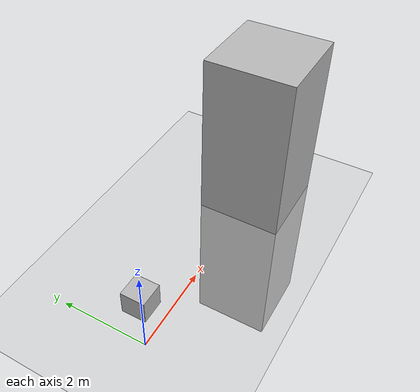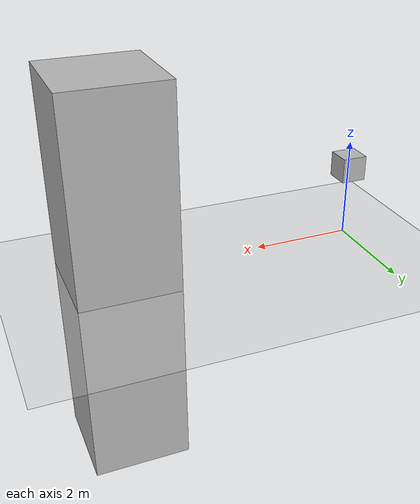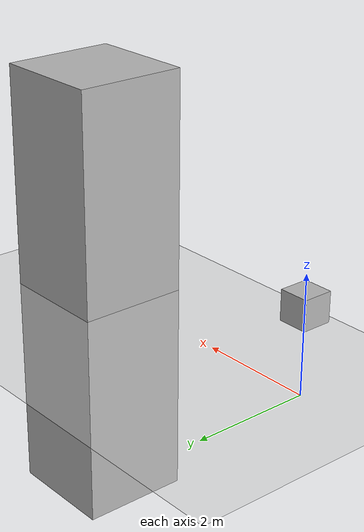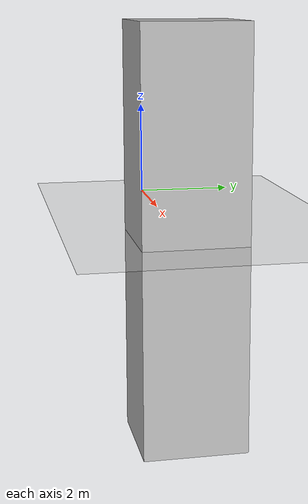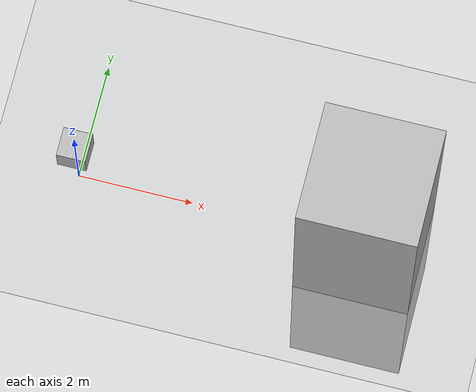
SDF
<?xml version="1.0" ?>
<sdf version="1.8">
  <world name="demo">
    <plugin filename="gz-sim-physics-system"
            name="gz::sim::systems::Physics">
    </plugin>
    <plugin filename="gz-sim-sensors-system"
            name="gz::sim::systems::Sensors">
      <render_engine>ogre2</render_engine>
      <background_color>0.8 0.8 0.8</background_color>
    </plugin>
    <plugin filename="gz-sim-scene-broadcaster-system"
            name="gz::sim::systems::SceneBroadcaster">
    </plugin>
    <plugin filename="gz-sim-user-commands-system"
            name="gz::sim::systems::UserCommands">
    </plugin>

    <gui fullscreen="0">

      <!-- 3D scene -->
      <plugin filename="MinimalScene" name="3D View">
        <gz-gui>
          <title>3D View</title>
          <property type="bool" key="showTitleBar">false</property>
          <property type="string" key="state">docked</property>
        </gz-gui>

        <engine>ogre2</engine>
        <scene>scene</scene>
        <ambient_light>0.4 0.4 0.4</ambient_light>
        <background_color>0.8 0.8 0.8</background_color>
        <camera_pose>-6 0 6 0 0.5 0</camera_pose>
      </plugin>

      <!-- Plugins that add functionality to the scene -->
      <plugin filename="EntityContextMenuPlugin" name="Entity context menu">
        <gz-gui>
          <property key="state" type="string">floating</property>
          <property key="width" type="double">5</property>
          <property key="height" type="double">5</property>
          <property key="showTitleBar" type="bool">false</property>
        </gz-gui>
      </plugin>
      <plugin filename="GzSceneManager" name="Scene Manager">
        <gz-gui>
          <property key="resizable" type="bool">false</property>
          <property key="width" type="double">5</property>
          <property key="height" type="double">5</property>
          <property key="state" type="string">floating</property>
          <property key="showTitleBar" type="bool">false</property>
        </gz-gui>
      </plugin>
      <plugin filename="InteractiveViewControl" name="Interactive view control">
        <gz-gui>
          <property key="resizable" type="bool">false</property>
          <property key="width" type="double">5</property>
          <property key="height" type="double">5</property>
          <property key="state" type="string">floating</property>
          <property key="showTitleBar" type="bool">false</property>
        </gz-gui>
      </plugin>
      <plugin filename="CameraTracking" name="Camera Tracking">
        <gz-gui>
          <property key="resizable" type="bool">false</property>
          <property key="width" type="double">5</property>
          <property key="height" type="double">5</property>
          <property key="state" type="string">floating</property>
          <property key="showTitleBar" type="bool">false</property>
        </gz-gui>
      </plugin>
      <!-- World control -->
      <plugin filename="WorldControl" name="World control">
        <gz-gui>
          <title>World control</title>
          <property type="bool" key="showTitleBar">false</property>
          <property type="bool" key="resizable">false</property>
          <property type="double" key="height">72</property>
          <property type="double" key="width">121</property>
          <property type="double" key="z">1</property>

          <property type="string" key="state">floating</property>
          <anchors target="3D View">
            <line own="left" target="left"/>
            <line own="bottom" target="bottom"/>
          </anchors>
        </gz-gui>

        <play_pause>true</play_pause>
        <step>true</step>
        <start_paused>true</start_paused>
        <use_event>true</use_event>

      </plugin>

      <!-- World statistics -->
      <plugin filename="WorldStats" name="World stats">
        <gz-gui>
          <title>World stats</title>
          <property type="bool" key="showTitleBar">false</property>
          <property type="bool" key="resizable">false</property>
          <property type="double" key="height">110</property>
          <property type="double" key="width">290</property>
          <property type="double" key="z">1</property>

          <property type="string" key="state">floating</property>
          <anchors target="3D View">
            <line own="right" target="right"/>
            <line own="bottom" target="bottom"/>
          </anchors>
        </gz-gui>

        <sim_time>true</sim_time>
        <real_time>true</real_time>
        <real_time_factor>true</real_time_factor>
        <iterations>true</iterations>
      </plugin>

      <plugin filename="VisualizeLidar" name="Visualize Lidar">
      </plugin>

      <!-- Inspector -->
      <plugin filename="ComponentInspector" name="Component inspector">
        <gz-gui>
          <property type="string" key="state">docked</property>
        </gz-gui>
      </plugin>

      <!-- Entity tree -->
      <plugin filename="EntityTree" name="Entity tree">
        <gz-gui>
          <property type="string" key="state">docked</property>
        </gz-gui>
      </plugin>
    </gui>

    <light name="sun" type="directional">
      <cast_shadows>true</cast_shadows>
      <pose>0 0 10 0 0 0</pose>
      <diffuse>0.8 0.8 0.8 1</diffuse>
      <specular>0.2 0.2 0.2 1</specular>
      <attenuation>
        <range>1000</range>
        <constant>0.9</constant>
        <linear>0.01</linear>
        <quadratic>0.001</quadratic>
      </attenuation>
      <direction>-0.5 0.1 -0.9</direction>
    </light>

    <model name="ground_plane">
      <static>true</static>
      <link name="link">
        <collision name="collision">
          <geometry>
            <plane>
              <normal>0 0 1</normal>
              <size>100 100</size>
            </plane>
          </geometry>
        </collision>
        <visual name="visual">
          <geometry>
            <plane>
              <normal>0 0 1</normal>
              <size>100 100</size>
            </plane>
          </geometry>
          <material>
            <ambient>0.8 0.8 0.8 1</ambient>
            <diffuse>0.8 0.8 0.8 1</diffuse>
            <specular>0.8 0.8 0.8 1</specular>
          </material>
        </visual>
      </link>
    </model>

    <include>
      <pose>0 0 1.5 0 0 0</pose>
      <uri>model://lidar_block</uri>
    </include>
    <include>
      <pose>5 0 0 0 0 0</pose>
      <uri>model://block_detect</uri>
    </include>
  </world>
</sdf>

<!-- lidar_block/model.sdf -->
<sdf version='1.6'>
  <model name='lidar_block'>
    <static>true</static>
    <link name="base_link">
      <visual name="base_visual">
        <geometry>
          <box>
            <size>0.5 0.5 0.5</size>
          </box>
        </geometry>
      </visual>

      <collision name="base_collision">
        <geometry>
          <box>
            <size>0.5 0.5 0.5</size>
          </box>
        </geometry>
      </collision>

      <inertial>
        <pose>0 0 0 0 0 0</pose>
        <mass>400</mass>
        <inertia>
          <ixx>266</ixx>
          <ixy>0</ixy>
          <iyy>266</iyy>
          <iyz>0</iyz>
          <izz>266</izz>
        </inertia>
      </inertial>
    </link>
   	<link name="lidar_link">
    	<inertial>
      	<pose>0 0 0 0 0 0</pose>
      	<mass>0.05</mass>
      	<inertia>
          <ixx>0.0133</ixx>
          <ixy>0</ixy>
          <ixz>0</ixz>
          <iyy>0.0133</iyy>
          <iyz>0</iyz>
          <izz>0.0133</izz>
      	</inertia>
    	</inertial>
    	<sensor name='gpu_lidar' type='gpu_lidar'>
    		<pose>0.25 0.25 0.25 0 0 0</pose>
    		<topic>lidar</topic>
      	<update_rate>10</update_rate>
      	<lidar>
      		<scan>
        		<horizontal>
        	  	<samples>10</samples>
        	    <resolution>1</resolution>
        	    <min_angle>-0.396263</min_angle>
        	    <max_angle>0.396263</max_angle>
        	  </horizontal>
        	  <vertical>
        	  	<samples>10</samples>
        	    <resolution>1</resolution>
        	    <min_angle>-0.261799</min_angle>
        	    <max_angle>0.261799</max_angle>
        	  </vertical>
       		</scan>
        	<range>
        		<min>0.08</min>
          	<max>10.0</max>
          	<resolution>0.01</resolution>
        	</range>
      	</lidar>
      	<always_on>1</always_on>
      	<visualize>true</visualize>
  		</sensor>
  	</link>
  	<joint name="lidar_joint" type="fixed">
    	<parent>base_link</parent>
    	<child>lidar_link</child>
    	<pose>0 0 0 0 0 0</pose>
    	<axis>1 0 0</axis>
  	</joint>
  </model>
</sdf>

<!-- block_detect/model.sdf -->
<sdf version='1.6'>
  <model name='block_detect'>
    <static>true</static>
    <link name="base_link">
      <visual name="base_visual">
        <geometry>
          <box>
            <size>2 2 8</size>
          </box>
        </geometry>
      </visual>

      <collision name="base_collision">
        <geometry>
          <box>
            <size>2 5 8</size>
          </box>
        </geometry>
      </collision>

      <inertial>
        <pose>0 0 0 0 0 0</pose>
        <mass>400</mass>
        <inertia>
          <ixx>266</ixx>
          <ixy>0</ixy>
          <iyy>266</iyy>
          <iyz>0</iyz>
          <izz>266</izz>
        </inertia>
      </inertial>
    </link>

  </model>
</sdf>
